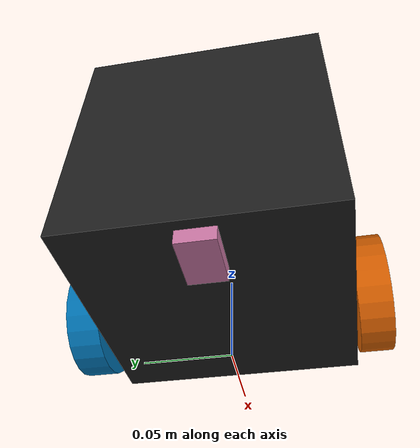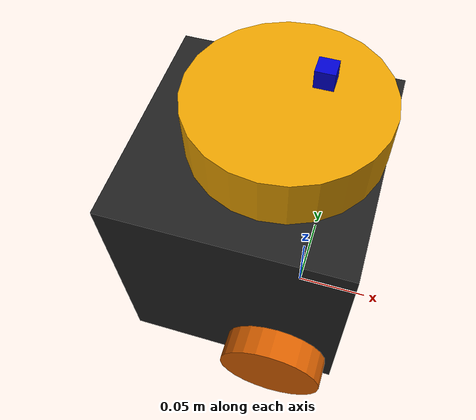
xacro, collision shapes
<?xml version="1.0" ?>
<robot name="turtlebot3_burger" xmlns:xacro="http://ros.org/wiki/xacro">
  <xacro:include filename="$(find cartographer_ros)/urdf/turtlebot3_description/urdf/common_properties.xacro"/>
  <xacro:include filename="$(find cartographer_ros)/urdf/turtlebot3_description/urdf/turtlebot3_burger.gazebo.xacro"/>
  <xacro:include filename="$(find cartographer_ros)/urdf/turtlebot3_description/urdf/camera.urdf.xacro" />

  <xacro:generic_camera name="camera" parent="base_link">
    <origin xyz="0.0 0.0 0.2" rpy="0 0 0"/>
  </xacro:generic_camera>

  <link name="base_footprint"/>

  <joint name="base_joint" type="fixed">
    <parent link="base_footprint"/>
    <child link="base_link"/>
    <origin xyz="0.0 0.0 0.010" rpy="0 0 0"/>
  </joint>

  <link name="base_link">
    <visual>
      <origin xyz="-0.032 0 0.0" rpy="0 0 0"/>
      <geometry>
        <mesh filename="package://turtlebot3_description/meshes/bases/burger_base.stl" scale="0.001 0.001 0.001"/>
      </geometry>
      <material name="light_black"/>
    </visual>

    <collision>
      <origin xyz="-0.032 0 0.070" rpy="0 0 0"/>
      <geometry>
        <box size="0.140 0.140 0.143"/>
      </geometry>
    </collision>

    <inertial>
      <origin xyz="0 0 0" rpy="0 0 0"/>
      <mass value="8.2573504e-01"/>
      <inertia ixx="2.2124416e-03" ixy="-1.2294101e-05" ixz="3.4938785e-05"
               iyy="2.1193702e-03" iyz="-5.0120904e-06"
               izz="2.0064271e-03" />
    </inertial>
  </link>

  <joint name="wheel_left_joint" type="continuous">
    <parent link="base_link"/>
    <child link="wheel_left_link"/>
    <origin xyz="0.0 0.08 0.023" rpy="-1.57 0 0"/>
    <axis xyz="0 0 1"/>
  </joint>

  <link name="wheel_left_link">
    <visual>
      <origin xyz="0 0 0" rpy="1.57 0 0"/>
      <geometry>
        <mesh filename="package://turtlebot3_description/meshes/wheels/left_tire.stl" scale="0.001 0.001 0.001"/>
      </geometry>
      <material name="dark"/>
    </visual>

    <collision>
      <origin xyz="0 0 0" rpy="0 0 0"/>
      <geometry>
        <cylinder length="0.018" radius="0.033"/>
      </geometry>
    </collision>

    <inertial>
      <origin xyz="0 0 0" />
      <mass value="2.8498940e-02" />
      <inertia ixx="1.1175580e-05" ixy="-4.2369783e-11" ixz="-5.9381719e-09"
               iyy="1.1192413e-05" iyz="-1.4400107e-11"
               izz="2.0712558e-05" />
      </inertial>
  </link>

  <joint name="wheel_right_joint" type="continuous">
    <parent link="base_link"/>
    <child link="wheel_right_link"/>
    <origin xyz="0.0 -0.080 0.023" rpy="-1.57 0 0"/>
    <axis xyz="0 0 1"/>
  </joint>

  <link name="wheel_right_link">
    <visual>
      <origin xyz="0 0 0" rpy="1.57 0 0"/>
      <geometry>
        <mesh filename="package://turtlebot3_description/meshes/wheels/right_tire.stl" scale="0.001 0.001 0.001"/>
      </geometry>
      <material name="dark"/>
    </visual>

    <collision>
      <origin xyz="0 0 0" rpy="0 0 0"/>
      <geometry>
        <cylinder length="0.018" radius="0.033"/>
      </geometry>
    </collision>

    <inertial>
      <origin xyz="0 0 0" />
      <mass value="2.8498940e-02" />
      <inertia ixx="1.1175580e-05" ixy="-4.2369783e-11" ixz="-5.9381719e-09"
               iyy="1.1192413e-05" iyz="-1.4400107e-11"
               izz="2.0712558e-05" />
      </inertial>
  </link>

  <joint name="caster_back_joint" type="fixed">
    <parent link="base_link"/>
    <child link="caster_back_link"/>
    <origin xyz="-0.081 0 -0.004" rpy="-1.57 0 0"/>
  </joint>

  <link name="caster_back_link">
    <collision>
      <origin xyz="0 0.001 0" rpy="0 0 0"/>
      <geometry>
        <box size="0.030 0.009 0.020"/>
      </geometry>
    </collision>

    <inertial>
      <origin xyz="0 0 0" />
      <mass value="0.005" />
      <inertia ixx="0.001" ixy="0.0" ixz="0.0"
               iyy="0.001" iyz="0.0"
               izz="0.001" />
    </inertial>
  </link>

  <joint name="imu_joint" type="fixed">
    <parent link="base_link"/>
    <child link="imu_link"/>
    <origin xyz="-0.032 0 0.068" rpy="0 0 0"/>
  </joint>

  <link name="imu_link"/>

  <joint name="scan_joint" type="fixed">
    <parent link="base_link"/>
    <child link="base_scan"/>
    <origin xyz="-0.032 0 0.172" rpy="0 0 0"/>
  </joint>

  <link name="base_scan">
    <visual>
      <origin xyz="0 0 0.0" rpy="0 0 0"/>
      <geometry>
        <mesh filename="package://turtlebot3_description/meshes/sensors/lds.stl" scale="0.001 0.001 0.001"/>
      </geometry>
      <material name="dark"/>
    </visual>

    <collision>
      <origin xyz="0.015 0 -0.0065" rpy="0 0 0"/>
      <geometry>
        <cylinder length="0.0315" radius="0.055"/>
      </geometry>
    </collision>

    <inertial>
      <mass value="0.114" />
      <origin xyz="0 0 0" />
      <inertia ixx="0.001" ixy="0.0" ixz="0.0"
               iyy="0.001" iyz="0.0"
               izz="0.001" />
    </inertial>
  </link>

</robot>

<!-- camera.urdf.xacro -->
<robot xmlns:xacro="http://ros.org/wiki/xacro">
    <xacro:property name="M_PI" value="3.1415926535897931" />

    <xacro:macro name="generic_camera_model" params="name parent *origin">
    <joint name="${name}_joint" type="fixed">
      <xacro:insert_block name="origin" />
      <parent link="${parent}"/>
      <child link="${name}_link"/>
    </joint>

    <link name="${name}_link">
      <inertial>
        <mass value="0.001" />
        <origin xyz="0 0 0" rpy="0 0 0" />
        <inertia ixx="0.0001" ixy="0" ixz="0" iyy="0.0001" iyz="0" izz="0.0001" />
      </inertial>
      <visual>
        <origin xyz="0 0 0" rpy="0 0 0" />
        <geometry>
          <box size="0.01 0.01 0.01" />
        </geometry>
        <material name="Blue">
          <color rgba="0.0 0.0 0.8 1"/>
        </material>
      </visual>
      <collision>
        <origin xyz="0 0 0" rpy="0 0 0" />
        <geometry>
          <box size="0.01 0.01 0.01" />
        </geometry>
      </collision>
    </link>

    <joint name="${name}_optical_joint" type="fixed">
      <origin xyz="0 0 0" rpy="${-M_PI/2} 0.0 ${-M_PI/2}" />
      <parent link="${name}_link" />
      <child link="${name}_optical_frame"/>
    </joint>

    <link name="${name}_optical_frame"/>
    </xacro:macro>

    <xacro:macro name="generic_camera" params="name parent *origin">
      <xacro:generic_camera_model name="${name}" parent="${parent}">
        <xacro:insert_block name="origin" />
      </xacro:generic_camera_model>

      <!-- ASUS Xtion PRO camera for simulation -->
      <gazebo reference="${name}_link">
        <sensor type="depth" name="${name}">
          <update_rate>10</update_rate>
          <camera>
            <horizontal_fov>${62.8 * M_PI/180.0}</horizontal_fov>
            <image>
              <format>R8G8B8</format>
              <width>640</width>
              <height>480</height>
            </image>
            <clip>
              <near>0.05</near>
              <far>12</far>
            </clip>
          </camera>
          <plugin name="${name}_camera_controller" filename="libgazebo_ros_openni_kinect.so">
            <alwaysOn>true</alwaysOn>
            <updateRate>10</updateRate>
            <imageTopicName>${name}/color/image_raw</imageTopicName>
            <cameraInfoTopicName>${name}/color/camera_info</cameraInfoTopicName>
            <depthImageTopicName>${name}/depth/image_raw</depthImageTopicName>
            <depthImageCameraInfoTopicName>${name}/depth/camera_info</depthImageCameraInfoTopicName>
            <pointCloudTopicName>${name}/depth/points</pointCloudTopicName>
            <frameName>${name}_optical_frame</frameName>
            <distortion_k1>0.0</distortion_k1>
            <distortion_k2>0.0</distortion_k2>
            <distortion_k3>0.0</distortion_k3>
            <distortion_t1>0.0</distortion_t1>
            <distortion_t2>0.0</distortion_t2>
          </plugin>
        </sensor>
      </gazebo>
    </xacro:macro>
  </robot>
